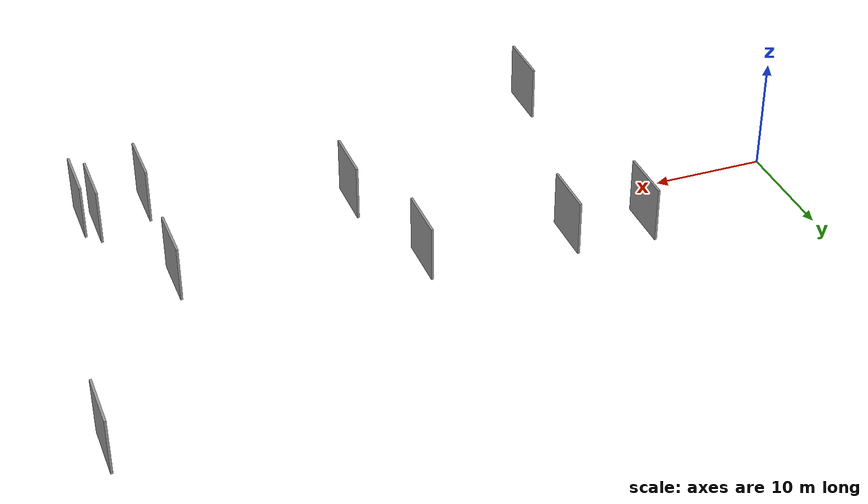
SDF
<sdf version="1.6">
 <world name="default">
  <scene>
   <sky><clouds><speed>12</speed></clouds></sky>
   <ambient>0.4 0.4 0.4 1</ambient>
   <background>0.7 0.7 0.7 1</background>
   <shadows>1</shadows>
  </scene>
  <gravity>0 0 -9.8066</gravity>
  <magnetic_field>6e-06 2.3e-05 -4.2e-05</magnetic_field>
  <physics default="0" name="default_physics" type="ode">
   <ode>
    <solver>
     <type>quick</type>
     <iters>10</iters>
     <sor>1.0</sor>
     <use_dynamic_moi_rescaling>0</use_dynamic_moi_rescaling>
    </solver>
    <constraints>
     <cfm>0</cfm>
     <erp>0.2</erp>
     <contact_max_correcting_vel>100</contact_max_correcting_vel>
     <contact_surface_layer>0.001</contact_surface_layer>
    </constraints>
   </ode>
   <max_step_size>0.004</max_step_size>
   <real_time_factor>1</real_time_factor>
   <real_time_update_rate>250</real_time_update_rate>
  </physics>
  <light name="sun" type="directional">
   <pose>0 0 10 0 0 0</pose>
   <diffuse>0.8 0.8 0.8 1</diffuse>
   <specular>0.2 0.2 0.2 1</specular>
   <attenuation>
    <range>1000</range>
    <constant>0.9</constant>
    <linear>0.01</linear>
    <quadratic>0.001</quadratic>
   </attenuation>
   <direction>-0.5 0.1 -0.9</direction>
  </light>
  <model name="grey_wall_1">
   <static>1</static>
   <pose>33.7222 4.0102 0.0 0.000000 0.000000 1.570796</pose>
   <link name="link">
    <pose>0 0 2.50 0 0 0</pose>
    <collision name="collision"><geometry><box><size>5.00 0.2 5.00</size></box></geometry></collision>
    <visual name="visual">
     <cast_shadows>0</cast_shadows>
     <geometry><box><size>5.00 0.2 5.00</size></box></geometry>
     <material>
      <script>
       <uri>model://grey_wall/materials/scripts</uri>
       <uri>model://grey_wall/materials/textures</uri>
       <name>vrc/grey_wall</name>
      </script>
     </material>
    </visual>
   </link>
  </model>
  <model name="grey_wall_2">
   <static>1</static>
   <pose>53.5272 -12.5504 0.0 0.000000 0.000000 1.570796</pose>
   <link name="link">
    <pose>0 0 2.50 0 0 0</pose>
    <collision name="collision"><geometry><box><size>5.00 0.2 5.00</size></box></geometry></collision>
    <visual name="visual">
     <cast_shadows>0</cast_shadows>
     <geometry><box><size>5.00 0.2 5.00</size></box></geometry>
     <material>
      <script>
       <uri>model://grey_wall/materials/scripts</uri>
       <uri>model://grey_wall/materials/textures</uri>
       <name>vrc/grey_wall</name>
      </script>
     </material>
    </visual>
   </link>
  </model>
  <model name="grey_wall_3">
   <static>1</static>
   <pose>58.1393 -10.8462 0.0 0.000000 0.000000 1.570796</pose>
   <link name="link">
    <pose>0 0 2.50 0 0 0</pose>
    <collision name="collision"><geometry><box><size>5.00 0.2 5.00</size></box></geometry></collision>
    <visual name="visual">
     <cast_shadows>0</cast_shadows>
     <geometry><box><size>5.00 0.2 5.00</size></box></geometry>
     <material>
      <script>
       <uri>model://grey_wall/materials/scripts</uri>
       <uri>model://grey_wall/materials/textures</uri>
       <name>vrc/grey_wall</name>
      </script>
     </material>
    </visual>
   </link>
  </model>
  <model name="grey_wall_4">
   <static>1</static>
   <pose>63.6970 18.1410 0.0 0.000000 0.000000 1.570796</pose>
   <link name="link">
    <pose>0 0 2.50 0 0 0</pose>
    <collision name="collision"><geometry><box><size>5.00 0.2 5.00</size></box></geometry></collision>
    <visual name="visual">
     <cast_shadows>0</cast_shadows>
     <geometry><box><size>5.00 0.2 5.00</size></box></geometry>
     <material>
      <script>
       <uri>model://grey_wall/materials/scripts</uri>
       <uri>model://grey_wall/materials/textures</uri>
       <name>vrc/grey_wall</name>
      </script>
     </material>
    </visual>
   </link>
  </model>
  <model name="grey_wall_5">
   <static>1</static>
   <pose>36.6017 -6.7152 0.0 0.000000 0.000000 1.570796</pose>
   <link name="link">
    <pose>0 0 2.50 0 0 0</pose>
    <collision name="collision"><geometry><box><size>5.00 0.2 5.00</size></box></geometry></collision>
    <visual name="visual">
     <cast_shadows>0</cast_shadows>
     <geometry><box><size>5.00 0.2 5.00</size></box></geometry>
     <material>
      <script>
       <uri>model://grey_wall/materials/scripts</uri>
       <uri>model://grey_wall/materials/textures</uri>
       <name>vrc/grey_wall</name>
      </script>
     </material>
    </visual>
   </link>
  </model>
  <model name="grey_wall_6">
   <static>1</static>
   <pose>16.0328 -16.8354 0.0 0.000000 0.000000 1.570796</pose>
   <link name="link">
    <pose>0 0 2.50 0 0 0</pose>
    <collision name="collision"><geometry><box><size>5.00 0.2 5.00</size></box></geometry></collision>
    <visual name="visual">
     <cast_shadows>0</cast_shadows>
     <geometry><box><size>5.00 0.2 5.00</size></box></geometry>
     <material>
      <script>
       <uri>model://grey_wall/materials/scripts</uri>
       <uri>model://grey_wall/materials/textures</uri>
       <name>vrc/grey_wall</name>
      </script>
     </material>
    </visual>
   </link>
  </model>
  <model name="grey_wall_7">
   <static>1</static>
   <pose>13.9638 5.3145 0.0 0.000000 0.000000 1.570796</pose>
   <link name="link">
    <pose>0 0 2.50 0 0 0</pose>
    <collision name="collision"><geometry><box><size>5.00 0.2 5.00</size></box></geometry></collision>
    <visual name="visual">
     <cast_shadows>0</cast_shadows>
     <geometry><box><size>5.00 0.2 5.00</size></box></geometry>
     <material>
      <script>
       <uri>model://grey_wall/materials/scripts</uri>
       <uri>model://grey_wall/materials/textures</uri>
       <name>vrc/grey_wall</name>
      </script>
     </material>
    </visual>
   </link>
  </model>
  <model name="grey_wall_8">
   <static>1</static>
   <pose>53.8115 -0.5571 0.0 0.000000 0.000000 1.570796</pose>
   <link name="link">
    <pose>0 0 2.50 0 0 0</pose>
    <collision name="collision"><geometry><box><size>5.00 0.2 5.00</size></box></geometry></collision>
    <visual name="visual">
     <cast_shadows>0</cast_shadows>
     <geometry><box><size>5.00 0.2 5.00</size></box></geometry>
     <material>
      <script>
       <uri>model://grey_wall/materials/scripts</uri>
       <uri>model://grey_wall/materials/textures</uri>
       <name>vrc/grey_wall</name>
      </script>
     </material>
    </visual>
   </link>
  </model>
  <model name="grey_wall_9">
   <static>1</static>
   <pose>20.9167 4.8607 0.0 0.000000 0.000000 1.570796</pose>
   <link name="link">
    <pose>0 0 2.50 0 0 0</pose>
    <collision name="collision"><geometry><box><size>5.00 0.2 5.00</size></box></geometry></collision>
    <visual name="visual">
     <cast_shadows>0</cast_shadows>
     <geometry><box><size>5.00 0.2 5.00</size></box></geometry>
     <material>
      <script>
       <uri>model://grey_wall/materials/scripts</uri>
       <uri>model://grey_wall/materials/textures</uri>
       <name>vrc/grey_wall</name>
      </script>
     </material>
    </visual>
   </link>
  </model>
  <model name="grey_wall_10">
   <static>1</static>
   <pose>59.2787 -12.0711 0.0 0.000000 0.000000 1.570796</pose>
   <link name="link">
    <pose>0 0 2.50 0 0 0</pose>
    <collision name="collision"><geometry><box><size>5.00 0.2 5.00</size></box></geometry></collision>
    <visual name="visual">
     <cast_shadows>0</cast_shadows>
     <geometry><box><size>5.00 0.2 5.00</size></box></geometry>
     <material>
      <script>
       <uri>model://grey_wall/materials/scripts</uri>
       <uri>model://grey_wall/materials/textures</uri>
       <name>vrc/grey_wall</name>
      </script>
     </material>
    </visual>
   </link>
  </model>
 </world>
</sdf>
